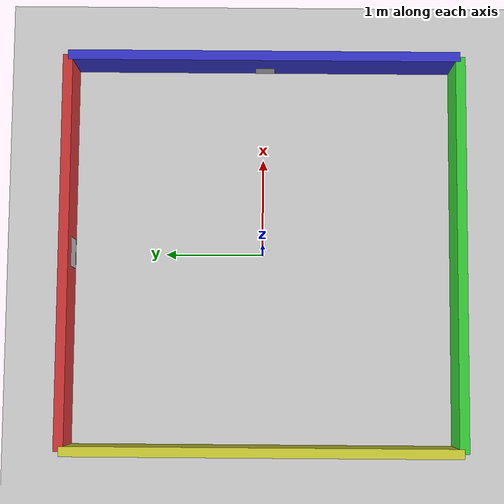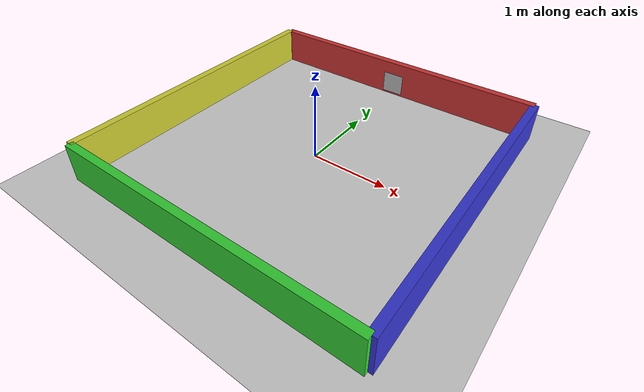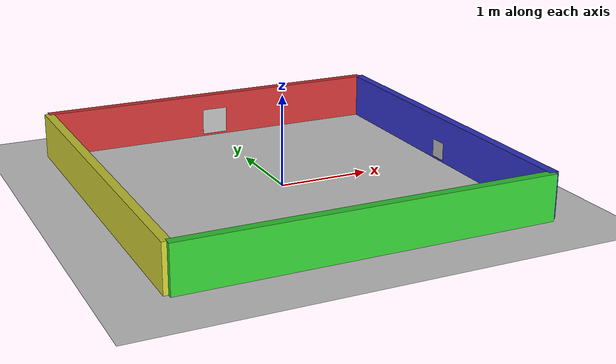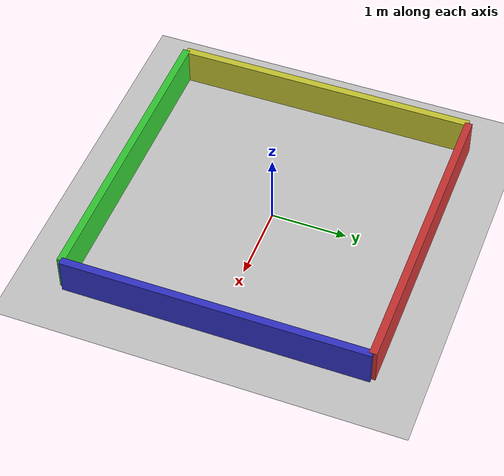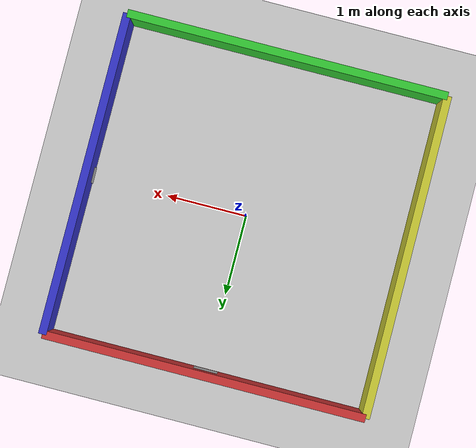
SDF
<?xml version="1.0" ?>
<sdf version='1.7'>
  <world name='aruco_test_world'>

    <!-- Lighting -->
    <light name='sun' type='directional'>
      <cast_shadows>1</cast_shadows>
      <pose>0 0 10 0 -0 0</pose>
      <diffuse>0.8 0.8 0.8 1</diffuse>
      <specular>0.2 0.2 0.2 1</specular>
      <attenuation>
        <range>1000</range>
        <constant>0.9</constant>
        <linear>0.01</linear>
        <quadratic>0.001</quadratic>
      </attenuation>
      <direction>-0.5 0.1 -0.9</direction>
    </light>

    <!-- Ground Plane -->
    <model name='ground_plane'>
      <static>1</static>
      <link name='link'>
        <collision name='collision'>
          <geometry>
            <plane>
              <normal>0 0 1</normal>
              <size>100 100</size>
            </plane>
          </geometry>
        </collision>
        <visual name='visual'>
          <cast_shadows>0</cast_shadows>
          <geometry>
            <plane>
              <normal>0 0 1</normal>
              <size>100 100</size>
            </plane>
          </geometry>
          <material>
            <script>
              <uri>file://media/materials/scripts/gazebo.material</uri>
              <name>Gazebo/Grey</name>
            </script>
          </material>
        </visual>
      </link>
    </model>

    <!-- Physics -->
    <gravity>0 0 -9.8</gravity>
    <physics type='ode'>
      <max_step_size>0.001</max_step_size>
      <real_time_factor>1</real_time_factor>
      <real_time_update_rate>500</real_time_update_rate>
    </physics>

    <!-- Scene -->
    <scene>
      <ambient>1.0 1.0 1.0 1</ambient>
      <background>1.0 1.0 1.0 1</background>
      <shadows>false</shadows>
    </scene>

    <!-- Simple Room - 4m x 4m -->

    <!-- North Wall - RED (where ArUco marker is) -->
    <model name='north_wall'>
      <static>1</static>
      <pose>0 2 0.25 0 0 0</pose>
      <link name='link'>
        <collision name='collision'>
          <geometry>
            <box>
              <size>4 0.1 0.5</size>
            </box>
          </geometry>
        </collision>
        <visual name='visual'>
          <geometry>
            <box>
              <size>4 0.1 0.5</size>
            </box>
          </geometry>
          <material>
            <ambient>0.8 0.2 0.2 1</ambient>
            <diffuse>0.8 0.2 0.2 1</diffuse>
          </material>
        </visual>
      </link>
    </model>

    <!-- South Wall - GREEN -->
    <model name='south_wall'>
      <static>1</static>
      <pose>0 -2 0.25 0 0 0</pose>
      <link name='link'>
        <collision name='collision'>
          <geometry>
            <box>
              <size>4 0.1 0.5</size>
            </box>
          </geometry>
        </collision>
        <visual name='visual'>
          <geometry>
            <box>
              <size>4 0.1 0.5</size>
            </box>
          </geometry>
          <material>
            <ambient>0.2 0.8 0.2 1</ambient>
            <diffuse>0.2 0.8 0.2 1</diffuse>
          </material>
        </visual>
      </link>
    </model>

    <!-- East Wall - BLUE -->
    <model name='east_wall'>
      <static>1</static>
      <pose>2 0 0.25 0 0 1.5708</pose>
      <link name='link'>
        <collision name='collision'>
          <geometry>
            <box>
              <size>4 0.1 0.5</size>
            </box>
          </geometry>
        </collision>
        <visual name='visual'>
          <geometry>
            <box>
              <size>4 0.1 0.5</size>
            </box>
          </geometry>
          <material>
            <ambient>0.2 0.2 0.8 1</ambient>
            <diffuse>0.2 0.2 0.8 1</diffuse>
          </material>
        </visual>
      </link>
    </model>

    <!-- West Wall - YELLOW -->
    <model name='west_wall'>
      <static>1</static>
      <pose>-2 0 0.25 0 0 1.5708</pose>
      <link name='link'>
        <collision name='collision'>
          <geometry>
            <box>
              <size>4 0.1 0.5</size>
            </box>
          </geometry>
        </collision>
        <visual name='visual'>
          <geometry>
            <box>
              <size>4 0.1 0.5</size>
            </box>
          </geometry>
          <material>
            <ambient>0.8 0.8 0.2 1</ambient>
            <diffuse>0.8 0.8 0.2 1</diffuse>
          </material>
        </visual>
      </link>
    </model>

    <!-- Aruco Marker - North Wall Center -->
      <model name='aruco_marker_0'>
        <static>true</static>
        <pose>0 1.95 0.173278 0 0 0</pose>
        <link name='link'>
          <visual name='aruco_visual'>
            <geometry>
              <box>
                <size>0.3 0.001 0.3</size>
              </box>
            </geometry>
            <material>
              <script>
                <uri>file://materials/scripts</uri>
                <uri>file://materials/textures</uri>
                <name>aruco_0</name>
              </script>
            </material>
          </visual>
        </link>
      </model>

      <!-- Aruco Marker - 2 East Wall Center -->
      <model name='aruco_marker_1'>
        <static>true</static>
        <pose>1.938740 -0.011936 0.127863 0 0 1.584782</pose>
        <link name='link'>
          <visual name='aruco_visual'>
            <geometry>
              <box>
                <size>0.2 0.001 0.2</size>
              </box>
            </geometry>
            <material>
              <script>
                <uri>file://materials/scripts</uri>
                <uri>file://materials/textures</uri>
                <name>aruco_1</name>
              </script>
            </material>
          </visual>
        </link>
      </model>

  </world>
</sdf>
